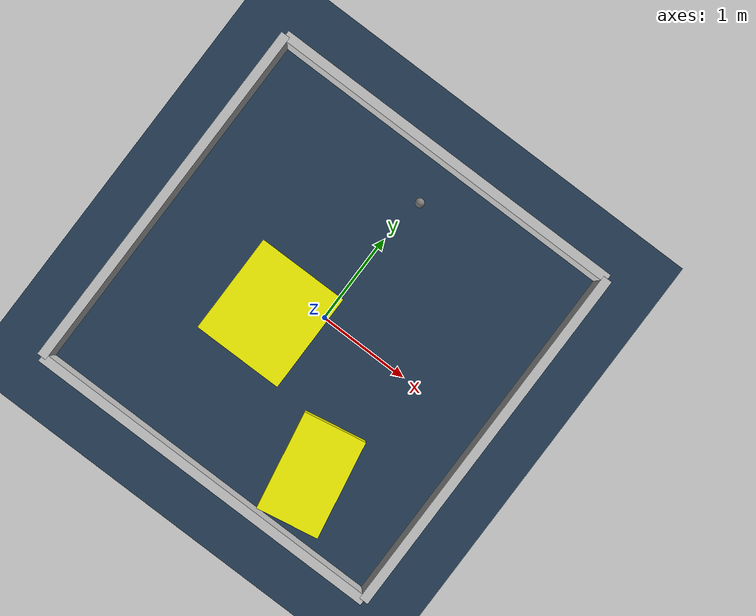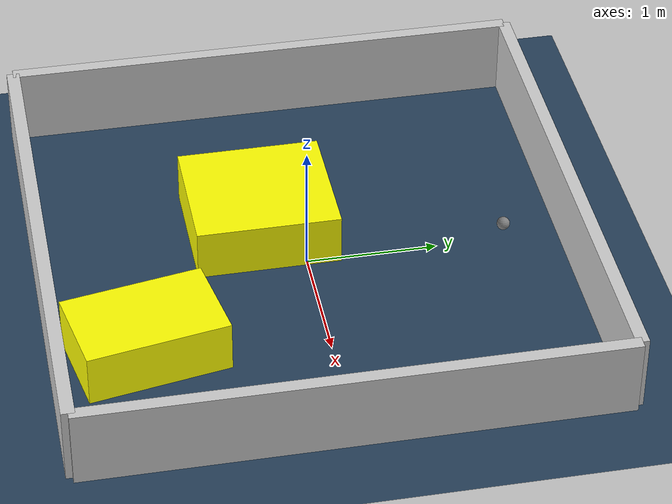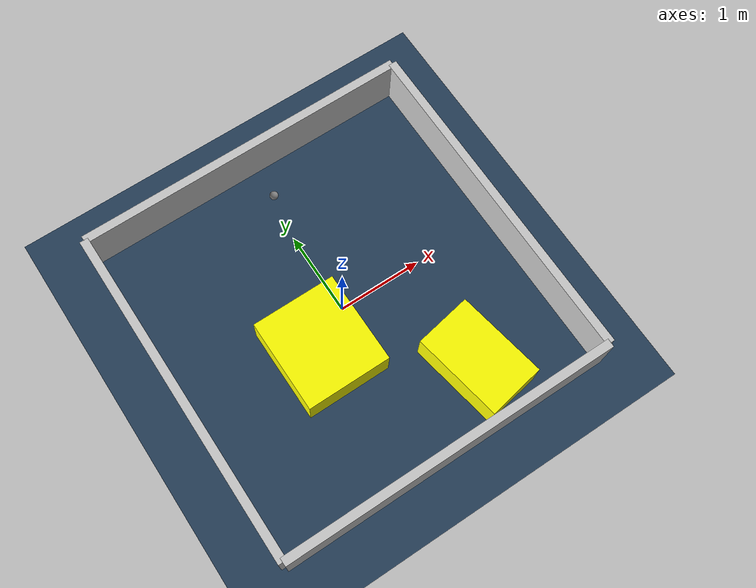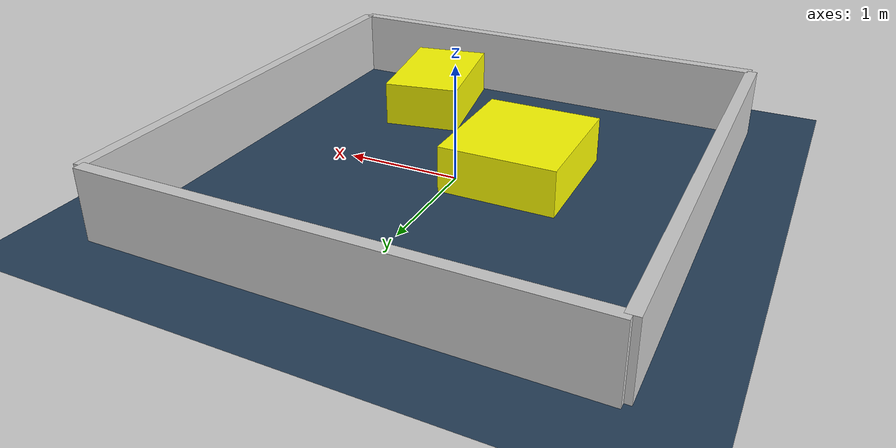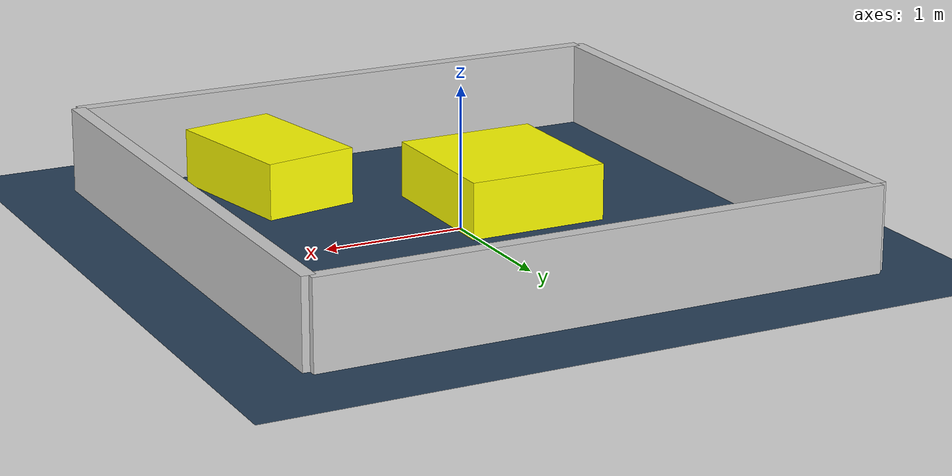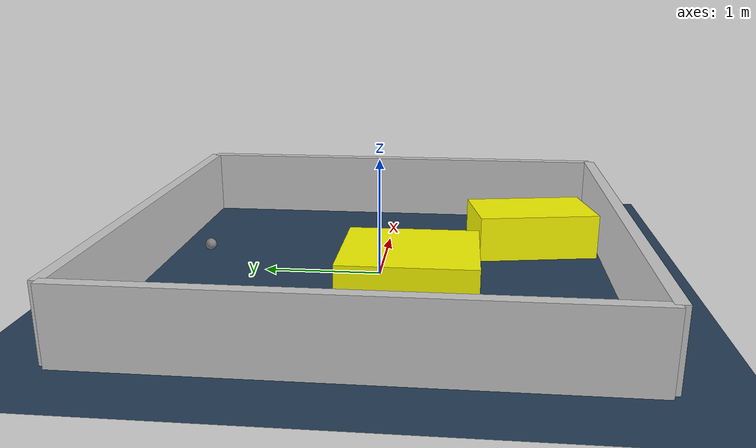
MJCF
<?xml version="1.0" ?>
<mujoco model="generated_environment">
  <option timestep="0.01" integrator="RK4" cone="elliptic"/>
  <default>
    <geom density="1"/>
  </default>
  <asset>
    <texture builtin="gradient" height="3072" rgb1="0.3 0.5 0.7" rgb2="0 0 0" type="skybox" width="512"/>
    <texture builtin="checker" height="300" mark="edge" markrgb="0.8 0.8 0.8" name="groundplane" rgb1="0.2 0.3 0.4" rgb2="0.1 0.2 0.3" type="2d" width="300"/>
    <material name="groundplane" reflectance="0.2" texrepeat="5 5" texture="groundplane" texuniform="true"/>
    <material name="robot" rgba="0.0 1.0 0.0 1"/>
  </asset>
  <worldbody>
    <light dir="0 0 -1" directional="true" pos="0 0 1.5"/>
    <geom condim="4" friction="1.0 0.005 0.001" material="groundplane" name="floor" size="0 0 0.05" type="plane"/>
    <body name="walls">
      <geom name="wall_1" condim="4" pos="-2.0 0.0 0.3" rgba="0.800000011920929 0.800000011920929 0.800000011920929 1.0" size="0.05 2.0 0.3" type="box"/>
      <geom name="wall_2" condim="4" pos="2.0 0.0 0.3" rgba="0.800000011920929 0.800000011920929 0.800000011920929 1.0" size="0.05 2.0 0.3" type="box"/>
      <geom name="wall_3" condim="4" pos="0.0 -2.0 0.3" rgba="0.800000011920929 0.800000011920929 0.800000011920929 1.0" size="2.0 0.05 0.3" type="box"/>
      <geom name="wall_4" condim="4" pos="0.0 2.0 0.3" rgba="0.800000011920929 0.800000011920929 0.800000011920929 1.0" size="2.0 0.05 0.3" type="box"/>
    </body>
    <body name="robot">
      <joint name="joint_x" type="slide" pos="0 0 0" axis="1 0 0"/>
      <joint name="joint_y" type="slide" pos="0 0 0" axis="0 1 0"/>
      <geom name="robot" type="sphere" pos="0.062347789266355313 1.5046962094041674 0.2" size="0.05" mass="5." friction="1.0 0.005 0.0001" condim="4"/>
      <site name="sensor_ball"/>
    </body>
    <body name="obstacle_1_movable">
      <geom name="obstacle_1_movable" condim="4" pos="0.8432847777183734 -1.332894856032814 0.2" euler="0 0 10.38382836886286" friction="1.0 0.005 0.001" rgba="1 1 0 1" size="0.3420808069957961 0.5388748749996486 0.2" type="box" mass="0.1"/>
      <joint type="free"/>
    </body>
    <body name="obstacle_2_movable">
      <geom name="obstacle_2_movable" condim="4" pos="-0.45921750582758314 -0.29059123342600723 0.2" euler="0 0 90.17587684642494" friction="1.0 0.005 0.001" rgba="1 1 0 1" size="0.5482551720239216 0.49886646707691773 0.2" type="box" mass="0.1"/>
      <joint type="free"/>
    </body>
  </worldbody>
  <actuator>
    <motor name="actuator_x" joint="joint_x" gear="1" ctrlrange="-1 1"/>
    <motor name="actuator_y" joint="joint_y" gear="1" ctrlrange="-1 1"/>
  </actuator>
</mujoco>
